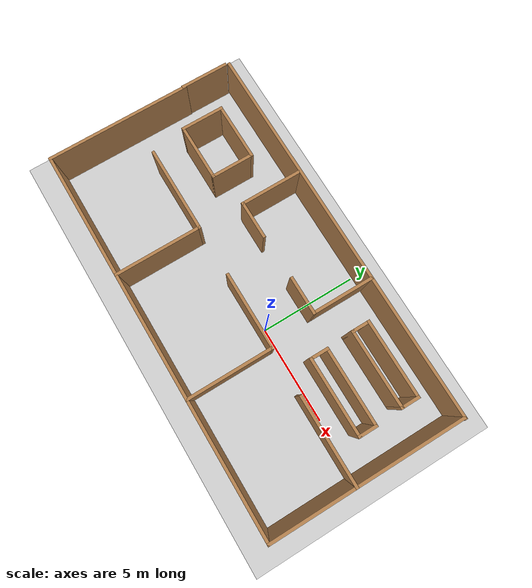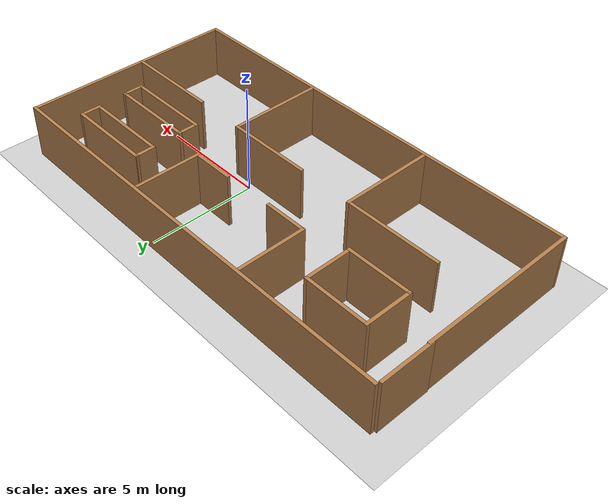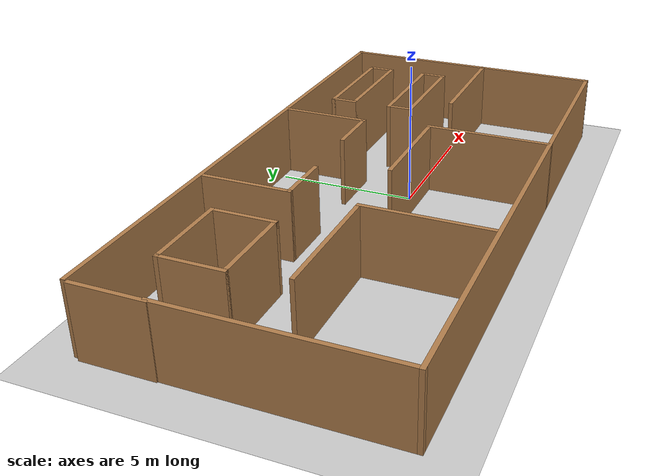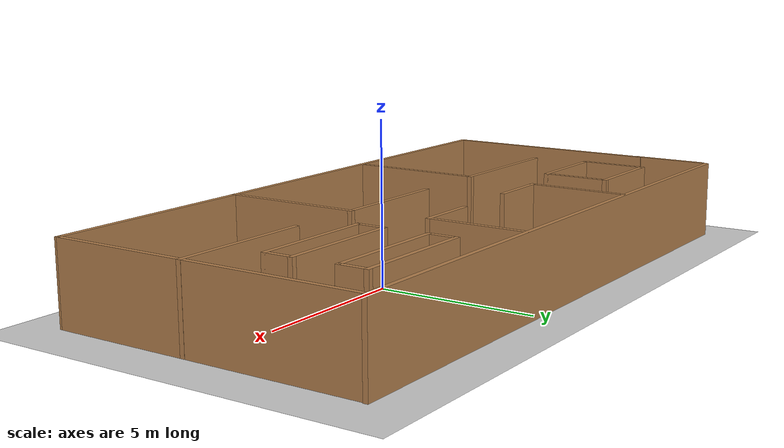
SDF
<sdf version="1.6">
 <world name="default">
  <light name="sun" type="directional">
   <pose>0 0 10 0 -0 0</pose>
   <diffuse>0.8 0.8 0.8 1</diffuse>
   <specular>0.1 0.1 0.1 1</specular>
   <attenuation>
    <range>1000</range>
    <constant>0.9</constant>
    <linear>0.01</linear>
    <quadratic>0.001</quadratic>
   </attenuation>
   <direction>-0.5 0.5 -1</direction>
  </light>
  <model name="ground_plane">
   <static>1</static>
   <link name="link">
    <collision name="collision">
     <geometry><plane><normal>0 0 1</normal><size>100 100</size></plane></geometry>
     <surface><friction><ode><mu>100</mu><mu2>50</mu2></ode></friction></surface>
    </collision>
    <visual name="visual">
     <cast_shadows>0</cast_shadows>
     <geometry><plane><normal>0 0 1</normal><size>100 100</size></plane></geometry>
     <material>
      <script><uri>file://media/materials/scripts/gazebo.material</uri><name>Gazebo/Grey</name></script>
     </material>
    </visual>
   </link>
  </model>
  <gravity>0 0 -9.8</gravity>
  <magnetic_field>6e-06 2.3e-05 -4.2e-05</magnetic_field>
  <atmosphere type="adiabatic"/>
  <physics name="default_physics" default="0" type="ode">
   <max_step_size>0.001</max_step_size>
   <real_time_factor>1</real_time_factor>
   <real_time_update_rate>1000</real_time_update_rate>
  </physics>
  <scene><ambient>0.4 0.4 0.4 1</ambient><background>0.7 0.7 0.7 1</background><shadows>1</shadows></scene>
  <spherical_coordinates>
   <surface_model>EARTH_WGS84</surface_model>
   <latitude_deg>0</latitude_deg>
   <longitude_deg>0</longitude_deg>
   <elevation>0</elevation>
   <heading_deg>0</heading_deg>
  </spherical_coordinates>
  <model name="Collision_Avoidance">
   <pose>-2.06808 0.235781 0 0 -0 0</pose>
   <link name="Wall_10">
    <collision name="Wall_10_Collision">
     <geometry><box><size>4.5 0.15 2.5</size></box></geometry>
     <pose>0 0 1.25 0 -0 0</pose>
    </collision>
    <visual name="Wall_10_Visual">
     <pose>0 0 1.25 0 -0 0</pose>
     <geometry><box><size>4.5 0.15 2.5</size></box></geometry>
     <material>
      <script><uri>file://media/materials/scripts/gazebo.material</uri><name>Gazebo/Wood</name></script>
      <ambient>1 1 1 1</ambient>
     </material>
    </visual>
    <pose>-5.52592 -0.567316 0 0 -0 3.14159</pose>
   </link>
   <link name="Wall_13">
    <collision name="Wall_13_Collision">
     <geometry><box><size>3.25 0.15 2.5</size></box></geometry>
     <pose>0 0 1.25 0 -0 0</pose>
    </collision>
    <visual name="Wall_13_Visual">
     <pose>0 0 1.25 0 -0 0</pose>
     <geometry><box><size>3.25 0.15 2.5</size></box></geometry>
     <material>
      <script><uri>file://media/materials/scripts/gazebo.material</uri><name>Gazebo/Wood</name></script>
      <ambient>1 1 1 1</ambient>
     </material>
    </visual>
    <pose>-3.30386 3.31355 0 0 0 -1.5708</pose>
   </link>
   <link name="Wall_18">
    <collision name="Wall_18_Collision">
     <geometry><box><size>3.25 0.15 2.5</size></box></geometry>
     <pose>0 0 1.25 0 -0 0</pose>
    </collision>
    <visual name="Wall_18_Visual">
     <pose>0 0 1.25 0 -0 0</pose>
     <geometry><box><size>3.25 0.15 2.5</size></box></geometry>
     <material>
      <script><uri>file://media/materials/scripts/gazebo.material</uri><name>Gazebo/Wood</name></script>
      <ambient>1 1 1 1</ambient>
     </material>
    </visual>
    <pose>2.753 3.37473 0 0 0 -1.5708</pose>
   </link>
   <link name="Wall_19">
    <collision name="Wall_19_Collision">
     <geometry><box><size>2 0.15 2.5</size></box></geometry>
     <pose>0 0 1.25 0 -0 0</pose>
    </collision>
    <visual name="Wall_19_Visual">
     <pose>0 0 1.25 0 -0 0</pose>
     <geometry><box><size>2 0.15 2.5</size></box></geometry>
     <material>
      <script><uri>file://media/materials/scripts/gazebo.material</uri><name>Gazebo/Wood</name></script>
      <ambient>1 1 1 1</ambient>
     </material>
    </visual>
    <pose>1.828 1.82473 0 0 -0 3.14159</pose>
   </link>
   <link name="Wall_21">
    <collision name="Wall_21_Collision">
     <geometry><box><size>2 0.15 2.5</size></box></geometry>
     <pose>0 0 1.25 0 -0 0</pose>
    </collision>
    <visual name="Wall_21_Visual">
     <pose>0 0 1.25 0 -0 0</pose>
     <geometry><box><size>2 0.15 2.5</size></box></geometry>
     <material>
      <script><uri>file://media/materials/scripts/gazebo.material</uri><name>Gazebo/Wood</name></script>
      <ambient>1 1 1 1</ambient>
     </material>
    </visual>
    <pose>-2.37886 1.76355 0 0 -0 0</pose>
   </link>
   <link name="Wall_23">
    <collision name="Wall_23_Collision">
     <geometry><box><size>4.5 0.15 2.5</size></box></geometry>
     <pose>0 0 1.25 0 -0 0</pose>
    </collision>
    <visual name="Wall_23_Visual">
     <pose>0 0 1.25 0 -0 0</pose>
     <geometry><box><size>4.5 0.15 2.5</size></box></geometry>
     <material>
      <script><uri>file://media/materials/scripts/gazebo.material</uri><name>Gazebo/Wood</name></script>
      <ambient>1 1 1 1</ambient>
     </material>
    </visual>
    <pose>3.12008 -2.75032 0 0 -0 1.5708</pose>
   </link>
   <link name="Wall_24">
    <collision name="Wall_24_Collision">
     <geometry><box><size>4 0.15 2.5</size></box></geometry>
     <pose>0 0 1.25 0 -0 0</pose>
    </collision>
    <visual name="Wall_24_Visual">
     <pose>0 0 1.25 0 -0 0</pose>
     <geometry><box><size>4 0.15 2.5</size></box></geometry>
     <material>
      <script><uri>file://media/materials/scripts/gazebo.material</uri><name>Gazebo/Wood</name></script>
      <ambient>1 1 1 1</ambient>
     </material>
    </visual>
    <pose>1.19508 -0.575322 0 0 -0 3.14159</pose>
   </link>
   <link name="Wall_26">
    <collision name="Wall_26_Collision">
     <geometry><box><size>4.5 0.15 2.5</size></box></geometry>
     <pose>0 0 1.25 0 -0 0</pose>
    </collision>
    <visual name="Wall_26_Visual">
     <pose>0 0 1.25 0 -0 0</pose>
     <geometry><box><size>4.5 0.15 2.5</size></box></geometry>
     <material>
      <script><uri>file://media/materials/scripts/gazebo.material</uri><name>Gazebo/Wood</name></script>
      <ambient>1 1 1 1</ambient>
     </material>
    </visual>
    <pose>7.73611 -0.612099 0 0 -0 3.14159</pose>
   </link>
   <link name="Wall_33">
    <collision name="Wall_33_Collision">
     <geometry><box><size>1 0.15 2.5</size></box></geometry>
     <pose>0 0 1.25 0 -0 0</pose>
    </collision>
    <visual name="Wall_33_Visual">
     <pose>0 0 1.25 0 -0 0</pose>
     <geometry><box><size>1 0.15 2.5</size></box></geometry>
     <material>
      <script><uri>file://media/materials/scripts/gazebo.material</uri><name>Gazebo/Wood</name></script>
      <ambient>1 1 1 1</ambient>
     </material>
    </visual>
    <pose>4.34369 3.27612 0 0 0 -1.5708</pose>
   </link>
   <link name="Wall_34">
    <collision name="Wall_34_Collision">
     <geometry><box><size>4 0.15 2.5</size></box></geometry>
     <pose>0 0 1.25 0 -0 0</pose>
    </collision>
    <visual name="Wall_34_Visual">
     <pose>0 0 1.25 0 -0 0</pose>
     <geometry><box><size>4 0.15 2.5</size></box></geometry>
     <material>
      <script><uri>file://media/materials/scripts/gazebo.material</uri><name>Gazebo/Wood</name></script>
      <ambient>1 1 1 1</ambient>
     </material>
    </visual>
    <pose>6.26869 2.85112 0 0 -0 0</pose>
   </link>
   <link name="Wall_35">
    <collision name="Wall_35_Collision">
     <geometry><box><size>1 0.15 2.5</size></box></geometry>
     <pose>0 0 1.25 0 -0 0</pose>
    </collision>
    <visual name="Wall_35_Visual">
     <pose>0 0 1.25 0 -0 0</pose>
     <geometry><box><size>1 0.15 2.5</size></box></geometry>
     <material>
      <script><uri>file://media/materials/scripts/gazebo.material</uri><name>Gazebo/Wood</name></script>
      <ambient>1 1 1 1</ambient>
     </material>
    </visual>
    <pose>8.19369 3.27612 0 0 -0 1.5708</pose>
   </link>
   <link name="Wall_36">
    <collision name="Wall_36_Collision">
     <geometry><box><size>4 0.15 2.5</size></box></geometry>
     <pose>0 0 1.25 0 -0 0</pose>
    </collision>
    <visual name="Wall_36_Visual">
     <pose>0 0 1.25 0 -0 0</pose>
     <geometry><box><size>4 0.15 2.5</size></box></geometry>
     <material>
      <script><uri>file://media/materials/scripts/gazebo.material</uri><name>Gazebo/Wood</name></script>
      <ambient>1 1 1 1</ambient>
     </material>
    </visual>
    <pose>6.26869 3.70112 0 0 -0 3.14159</pose>
   </link>
   <link name="Wall_38">
    <collision name="Wall_38_Collision">
     <geometry><box><size>1 0.15 2.5</size></box></geometry>
     <pose>0 0 1.25 0 -0 0</pose>
    </collision>
    <visual name="Wall_38_Visual">
     <pose>0 0 1.25 0 -0 0</pose>
     <geometry><box><size>1 0.15 2.5</size></box></geometry>
     <material>
      <script><uri>file://media/materials/scripts/gazebo.material</uri><name>Gazebo/Wood</name></script>
      <ambient>1 1 1 1</ambient>
     </material>
    </visual>
    <pose>4.40487 1.04304 0 0 0 -1.5708</pose>
   </link>
   <link name="Wall_39">
    <collision name="Wall_39_Collision">
     <geometry><box><size>4 0.15 2.5</size></box></geometry>
     <pose>0 0 1.25 0 -0 0</pose>
    </collision>
    <visual name="Wall_39_Visual">
     <pose>0 0 1.25 0 -0 0</pose>
     <geometry><box><size>4 0.15 2.5</size></box></geometry>
     <material>
      <script><uri>file://media/materials/scripts/gazebo.material</uri><name>Gazebo/Wood</name></script>
      <ambient>1 1 1 1</ambient>
     </material>
    </visual>
    <pose>6.32987 0.618036 0 0 -0 0</pose>
   </link>
   <link name="Wall_4">
    <collision name="Wall_4_Collision">
     <geometry><box><size>20 0.15 2.5</size></box></geometry>
     <pose>0 0 1.25 0 -0 0</pose>
    </collision>
    <visual name="Wall_4_Visual">
     <pose>0 0 1.25 0 -0 0</pose>
     <geometry><box><size>20 0.15 2.5</size></box></geometry>
     <material>
      <script><uri>file://media/materials/scripts/gazebo.material</uri><name>Gazebo/Wood</name></script>
      <ambient>1 1 1 1</ambient>
     </material>
    </visual>
    <pose>0.030591 4.92532 0 0 -0 0</pose>
   </link>
   <link name="Wall_40">
    <collision name="Wall_40_Collision">
     <geometry><box><size>1 0.15 2.5</size></box></geometry>
     <pose>0 0 1.25 0 -0 0</pose>
    </collision>
    <visual name="Wall_40_Visual">
     <pose>0 0 1.25 0 -0 0</pose>
     <geometry><box><size>1 0.15 2.5</size></box></geometry>
     <material>
      <script><uri>file://media/materials/scripts/gazebo.material</uri><name>Gazebo/Wood</name></script>
      <ambient>1 1 1 1</ambient>
     </material>
    </visual>
    <pose>8.25487 1.04304 0 0 -0 1.5708</pose>
   </link>
   <link name="Wall_41">
    <collision name="Wall_41_Collision">
     <geometry><box><size>4 0.15 2.5</size></box></geometry>
     <pose>0 0 1.25 0 -0 0</pose>
    </collision>
    <visual name="Wall_41_Visual">
     <pose>0 0 1.25 0 -0 0</pose>
     <geometry><box><size>4 0.15 2.5</size></box></geometry>
     <material>
      <script><uri>file://media/materials/scripts/gazebo.material</uri><name>Gazebo/Wood</name></script>
      <ambient>1 1 1 1</ambient>
     </material>
    </visual>
    <pose>6.32987 1.46804 0 0 -0 3.14159</pose>
   </link>
   <link name="Wall_48">
    <collision name="Wall_48_Collision">
     <geometry><box><size>2.25 0.15 2.5</size></box></geometry>
     <pose>0 0 1.25 0 -0 0</pose>
    </collision>
    <visual name="Wall_48_Visual">
     <pose>0 0 1.25 0 -0 0</pose>
     <geometry><box><size>2.25 0.15 2.5</size></box></geometry>
     <material>
      <script><uri>file://media/materials/scripts/gazebo.material</uri><name>Gazebo/Wood</name></script>
      <ambient>1 1 1 1</ambient>
     </material>
    </visual>
    <pose>-8.04535 2.31463 0 0 0 -1.5708</pose>
   </link>
   <link name="Wall_49">
    <collision name="Wall_49_Collision">
     <geometry><box><size>3 0.15 2.5</size></box></geometry>
     <pose>0 0 1.25 0 -0 0</pose>
    </collision>
    <visual name="Wall_49_Visual">
     <pose>0 0 1.25 0 -0 0</pose>
     <geometry><box><size>3 0.15 2.5</size></box></geometry>
     <material>
      <script><uri>file://media/materials/scripts/gazebo.material</uri><name>Gazebo/Wood</name></script>
      <ambient>1 1 1 1</ambient>
     </material>
    </visual>
    <pose>-6.62035 1.26463 0 0 -0 0</pose>
   </link>
   <link name="Wall_5">
    <collision name="Wall_5_Collision">
     <geometry><box><size>9.96946 0.15 2.5</size></box></geometry>
     <pose>0 0 1.25 0 -0 0</pose>
    </collision>
    <visual name="Wall_5_Visual">
     <pose>0 0 1.25 0 -0 0</pose>
     <geometry><box><size>9.96946 0.15 2.5</size></box></geometry>
     <material>
      <script><uri>file://media/materials/scripts/gazebo.material</uri><name>Gazebo/Wood</name></script>
      <ambient>1 1 1 1</ambient>
     </material>
    </visual>
    <pose>9.90971 -0.014973 0 0 0 -1.57391</pose>
   </link>
   <link name="Wall_50">
    <collision name="Wall_50_Collision">
     <geometry><box><size>2.25 0.15 2.5</size></box></geometry>
     <pose>0 0 1.25 0 -0 0</pose>
    </collision>
    <visual name="Wall_50_Visual">
     <pose>0 0 1.25 0 -0 0</pose>
     <geometry><box><size>2.25 0.15 2.5</size></box></geometry>
     <material>
      <script><uri>file://media/materials/scripts/gazebo.material</uri><name>Gazebo/Wood</name></script>
      <ambient>1 1 1 1</ambient>
     </material>
    </visual>
    <pose>-5.19535 2.31463 0 0 -0 1.5708</pose>
   </link>
   <link name="Wall_51">
    <collision name="Wall_51_Collision">
     <geometry><box><size>3 0.15 2.5</size></box></geometry>
     <pose>0 0 1.25 0 -0 0</pose>
    </collision>
    <visual name="Wall_51_Visual">
     <pose>0 0 1.25 0 -0 0</pose>
     <geometry><box><size>3 0.15 2.5</size></box></geometry>
     <material>
      <script><uri>file://media/materials/scripts/gazebo.material</uri><name>Gazebo/Wood</name></script>
      <ambient>1 1 1 1</ambient>
     </material>
    </visual>
    <pose>-6.62035 3.36463 0 0 -0 3.14159</pose>
   </link>
   <link name="Wall_6">
    <collision name="Wall_6_Collision">
     <geometry><box><size>20 0.15 2.5</size></box></geometry>
     <pose>0 0 1.25 0 -0 0</pose>
    </collision>
    <visual name="Wall_6_Visual">
     <pose>0 0 1.25 0 -0 0</pose>
     <geometry><box><size>20 0.15 2.5</size></box></geometry>
     <material>
      <script><uri>file://media/materials/scripts/gazebo.material</uri><name>Gazebo/Wood</name></script>
      <ambient>1 1 1 1</ambient>
     </material>
    </visual>
    <pose>-0.03059 -4.92468 0 0 -0 3.14159</pose>
   </link>
   <link name="Wall_7">
    <collision name="Wall_7_Collision">
     <geometry><box><size>7.5 0.15 2.5</size></box></geometry>
     <pose>0 0 1.25 0 -0 0</pose>
    </collision>
    <visual name="Wall_7_Visual">
     <pose>0 0 1.25 0 -0 0</pose>
     <geometry><box><size>7.5 0.15 2.5</size></box></geometry>
     <material>
      <script><uri>file://media/materials/scripts/gazebo.material</uri><name>Gazebo/Wood</name></script>
      <ambient>1 1 1 1</ambient>
     </material>
    </visual>
    <pose>-9.95559 -1.24968 0 0 -0 1.5708</pose>
   </link>
   <link name="Wall_9">
    <collision name="Wall_9_Collision">
     <geometry><box><size>4.5 0.15 2.5</size></box></geometry>
     <pose>0 0 1.25 0 -0 0</pose>
    </collision>
    <visual name="Wall_9_Visual">
     <pose>0 0 1.25 0 -0 0</pose>
     <geometry><box><size>4.5 0.15 2.5</size></box></geometry>
     <material>
      <script><uri>file://media/materials/scripts/gazebo.material</uri><name>Gazebo/Wood</name></script>
      <ambient>1 1 1 1</ambient>
     </material>
    </visual>
    <pose>-3.35092 -2.74232 0 0 -0 1.5708</pose>
   </link>
   <static>1</static>
  </model>
  <model name="collision">
   <pose>-12.0585 3.78473 0 0 -0 0</pose>
   <link name="Wall_8">
    <collision name="Wall_8_Collision">
     <geometry><box><size>2.5 0.15 2.5</size></box></geometry>
     <pose>0 0 1.25 0 -0 0</pose>
    </collision>
    <visual name="Wall_8_Visual">
     <pose>0 0 1.25 0 -0 0</pose>
     <geometry><box><size>2.5 0.15 2.5</size></box></geometry>
     <material>
      <script><uri>file://media/materials/scripts/gazebo.material</uri><name>Gazebo/Wood</name></script>
      <ambient>1 1 1 1</ambient>
     </material>
    </visual>
    <pose>0 0 0 0 0 -1.5708</pose>
   </link>
   <static>1</static>
  </model>
 </world>
</sdf>
